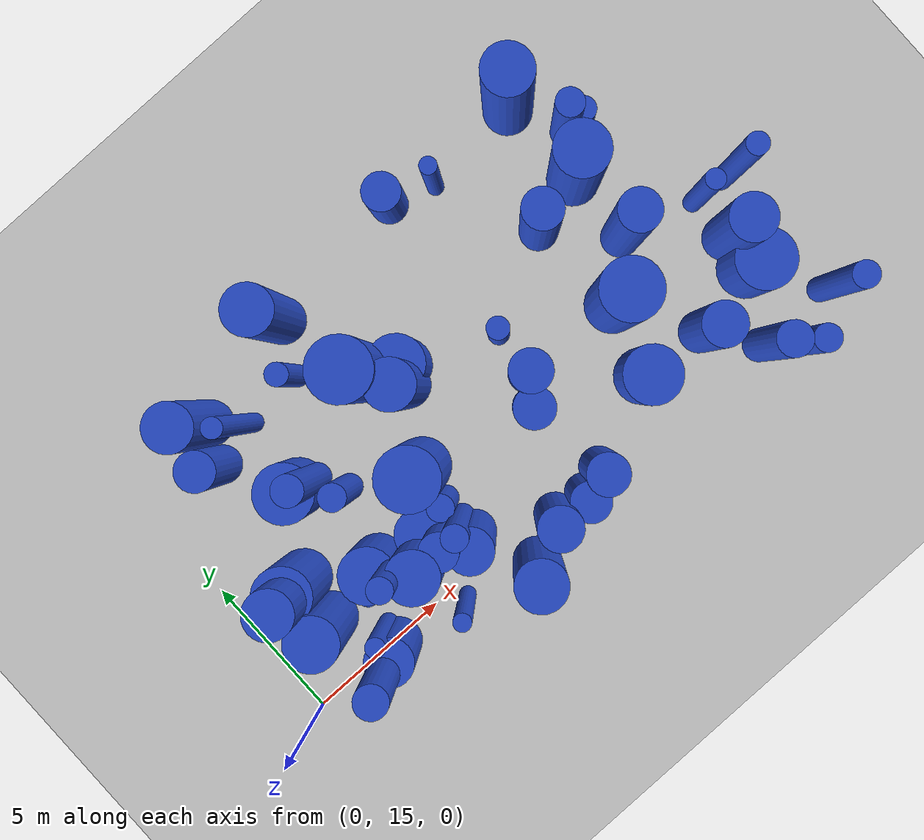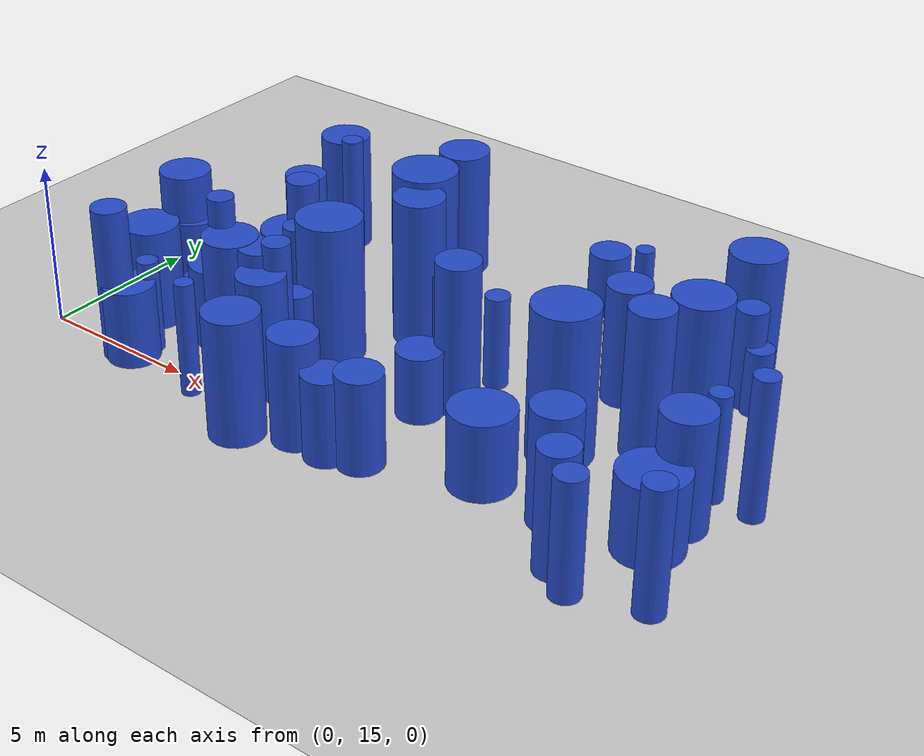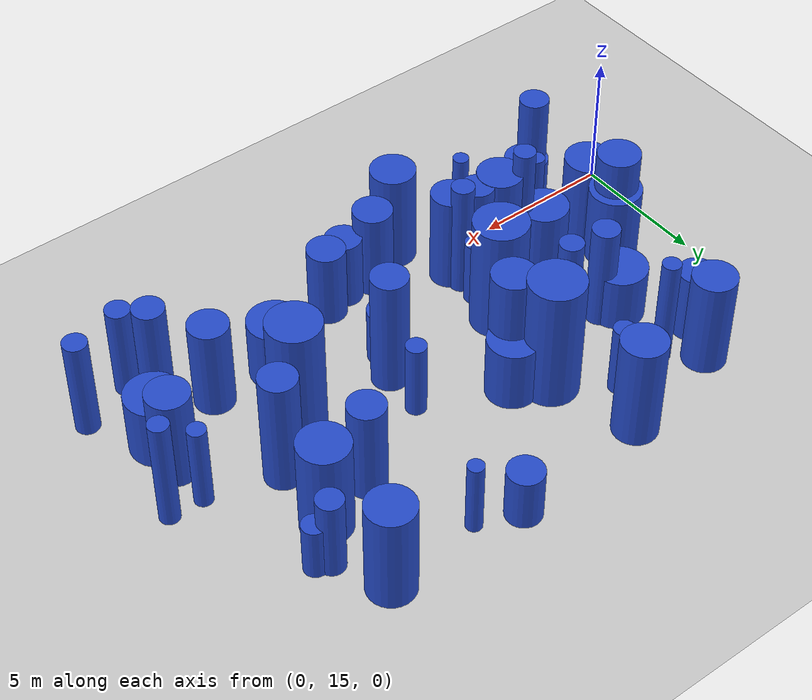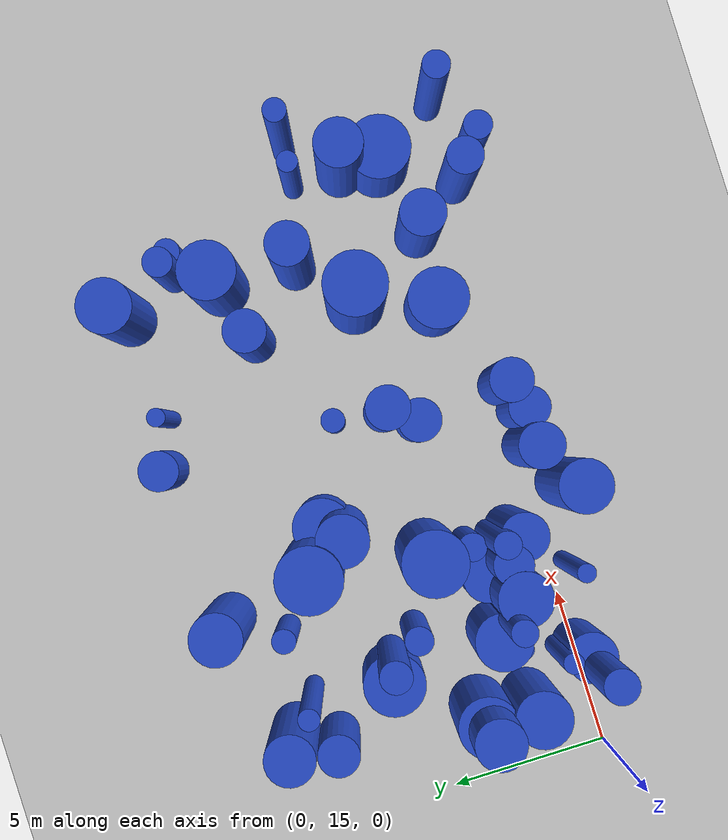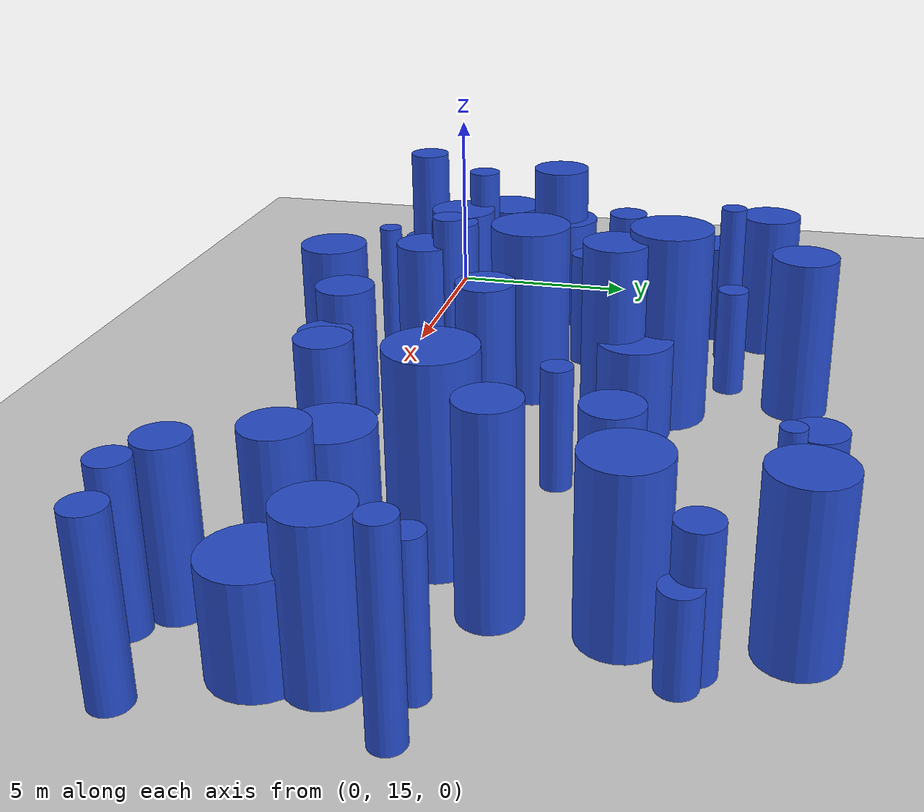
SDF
<sdf version="1.6">
 <world name="default">
  <model name="ground_plane">
   <static>1</static>
   <link name="link">
    <collision name="collision">
     <geometry><plane><normal>0 0 1</normal><size>100 100</size></plane></geometry>
     <surface><friction><ode><mu>100</mu><mu2>50</mu2></ode></friction></surface>
    </collision>
    <visual name="visual">
     <cast_shadows>0</cast_shadows>
     <geometry><plane><normal>0 0 1</normal><size>100 100</size></plane></geometry>
     <material>
      <script><uri>file://media/materials/scripts/gazebo.material</uri><name>Gazebo/Grey</name></script>
     </material>
    </visual>
   </link>
  </model>
  <model name="17">
   <static>0</static>
   <link name="link">
    <inertial>
     <mass>2</mass>
     <inertia><ixx>1.4202</ixx><ixy>0</ixy><ixz>0</ixz><iyy>1.4202</iyy><iyz>0</iyz><izz>0.970689</izz></inertia>
    </inertial>
    <collision name="collision">
     <geometry><cylinder><length>2.36836</length><radius>0.985235</radius></cylinder></geometry>
     <surface><contact><collide_without_contact>1</collide_without_contact></contact></surface>
    </collision>
    <visual name="visual">
     <geometry><cylinder><length>2.36836</length><radius>0.985235</radius></cylinder></geometry>
     <material>
      <script><uri>file://media/materials/scripts/gazebo.material</uri><name>Gazebo/Blue</name></script>
     </material>
    </visual>
    <gravity>0</gravity>
   </link>
   <pose>19.9852 16.4259 1.18418 0 -0 0</pose>
  </model>
  <model name="28">
   <static>0</static>
   <link name="link">
    <inertial>
     <mass>2</mass>
     <inertia><ixx>1.61305</ixx><ixy>0</ixy><ixz>0</ixz><iyy>1.61305</iyy><iyz>0</iyz><izz>0.463081</izz></inertia>
    </inertial>
    <collision name="collision">
     <geometry><cylinder><length>2.87908</length><radius>0.680501</radius></cylinder></geometry>
     <surface><contact><collide_without_contact>1</collide_without_contact></contact></surface>
    </collision>
    <visual name="visual">
     <geometry><cylinder><length>2.87908</length><radius>0.680501</radius></cylinder></geometry>
     <material>
      <script><uri>file://media/materials/scripts/gazebo.material</uri><name>Gazebo/Blue</name></script>
     </material>
    </visual>
    <gravity>0</gravity>
   </link>
   <pose>12.0274 14.794 1.43954 0 -0 0</pose>
  </model>
  <model name="45">
   <static>0</static>
   <link name="link">
    <inertial>
     <mass>2</mass>
     <inertia><ixx>1.28619</ixx><ixy>0</ixy><ixz>0</ixz><iyy>1.28619</iyy><iyz>0</iyz><izz>0.628767</izz></inertia>
    </inertial>
    <collision name="collision">
     <geometry><cylinder><length>2.41471</length><radius>0.792948</radius></cylinder></geometry>
     <surface><contact><collide_without_contact>1</collide_without_contact></contact></surface>
    </collision>
    <visual name="visual">
     <geometry><cylinder><length>2.41471</length><radius>0.792948</radius></cylinder></geometry>
     <material>
      <script><uri>file://media/materials/scripts/gazebo.material</uri><name>Gazebo/Blue</name></script>
     </material>
    </visual>
    <gravity>0</gravity>
   </link>
   <pose>6.54895 17.1856 1.20735 0 -0 0</pose>
  </model>
  <model name="54">
   <static>0</static>
   <link name="link">
    <inertial>
     <mass>2</mass>
     <inertia><ixx>1.90004</ixx><ixy>0</ixy><ixz>0</ixz><iyy>1.90004</iyy><iyz>0</iyz><izz>0.889584</izz></inertia>
    </inertial>
    <collision name="collision">
     <geometry><cylinder><length>2.95491</length><radius>0.943178</radius></cylinder></geometry>
     <surface><contact><collide_without_contact>1</collide_without_contact></contact></surface>
    </collision>
    <visual name="visual">
     <geometry><cylinder><length>2.95491</length><radius>0.943178</radius></cylinder></geometry>
     <material>
      <script><uri>file://media/materials/scripts/gazebo.material</uri><name>Gazebo/Blue</name></script>
     </material>
    </visual>
    <gravity>0</gravity>
   </link>
   <pose>2.3369 18.5513 1.47745 0 -0 0</pose>
  </model>
  <model name="55">
   <static>0</static>
   <link name="link">
    <inertial>
     <mass>2</mass>
     <inertia><ixx>2.77636</ixx><ixy>0</ixy><ixz>0</ixz><iyy>2.77636</iyy><iyz>0</iyz><izz>0.243438</izz></inertia>
    </inertial>
    <collision name="collision">
     <geometry><cylinder><length>3.99097</length><radius>0.493394</radius></cylinder></geometry>
     <surface><contact><collide_without_contact>1</collide_without_contact></contact></surface>
    </collision>
    <visual name="visual">
     <geometry><cylinder><length>3.99097</length><radius>0.493394</radius></cylinder></geometry>
     <material>
      <script><uri>file://media/materials/scripts/gazebo.material</uri><name>Gazebo/Blue</name></script>
     </material>
    </visual>
    <gravity>0</gravity>
   </link>
   <pose>4.84616 20.723 1.99548 0 -0 0</pose>
  </model>
  <model name="67">
   <static>0</static>
   <link name="link">
    <inertial>
     <mass>2</mass>
     <inertia><ixx>2.5861</ixx><ixy>0</ixy><ixz>0</ixz><iyy>2.5861</iyy><iyz>0</iyz><izz>0.518654</izz></inertia>
    </inertial>
    <collision name="collision">
     <geometry><cylinder><length>3.7364</length><radius>0.720177</radius></cylinder></geometry>
     <surface><contact><collide_without_contact>1</collide_without_contact></contact></surface>
    </collision>
    <visual name="visual">
     <geometry><cylinder><length>3.7364</length><radius>0.720177</radius></cylinder></geometry>
     <material>
      <script><uri>file://media/materials/scripts/gazebo.material</uri><name>Gazebo/Blue</name></script>
     </material>
    </visual>
    <gravity>0</gravity>
   </link>
   <pose>7.55571 15.9335 1.8682 0 -0 0</pose>
  </model>
  <model name="72">
   <static>0</static>
   <link name="link">
    <inertial>
     <mass>2</mass>
     <inertia>
      <ixx>2.14031</ixx>
      <ixy>0</ixy>
      <ixz>0</ixz>
      <iyy>2.14031</iyy>
      <iyz>0</iyz>
      <izz>0.0819198</izz>
     </inertia>
    </inertial>
    <collision name="collision">
     <geometry><cylinder><length>3.5491</length><radius>0.286216</radius></cylinder></geometry>
     <surface><contact><collide_without_contact>1</collide_without_contact></contact></surface>
    </collision>
    <visual name="visual">
     <geometry><cylinder><length>3.5491</length><radius>0.286216</radius></cylinder></geometry>
     <material>
      <script><uri>file://media/materials/scripts/gazebo.material</uri><name>Gazebo/Blue</name></script>
     </material>
    </visual>
    <gravity>0</gravity>
   </link>
   <pose>5.98317 14.5224 1.77455 0 -0 0</pose>
  </model>
  <model name="144">
   <static>0</static>
   <link name="link">
    <inertial>
     <mass>2</mass>
     <inertia><ixx>2.28391</ixx><ixy>0</ixy><ixz>0</ixz><iyy>2.28391</iyy><iyz>0</iyz><izz>0.498376</izz></inertia>
    </inertial>
    <collision name="collision">
     <geometry><cylinder><length>3.49405</length><radius>0.705958</radius></cylinder></geometry>
     <surface><contact><collide_without_contact>1</collide_without_contact></contact></surface>
    </collision>
    <visual name="visual">
     <geometry><cylinder><length>3.49405</length><radius>0.705958</radius></cylinder></geometry>
     <material>
      <script><uri>file://media/materials/scripts/gazebo.material</uri><name>Gazebo/Blue</name></script>
     </material>
    </visual>
    <gravity>0</gravity>
   </link>
   <pose>17.4609 15.8955 1.74702 0 -0 0</pose>
  </model>
  <model name="146">
   <static>0</static>
   <link name="link">
    <inertial>
     <mass>2</mass>
     <inertia><ixx>2.62442</ixx><ixy>0</ixy><ixz>0</ixz><iyy>2.62442</iyy><iyz>0</iyz><izz>0.606882</izz></inertia>
    </inertial>
    <collision name="collision">
     <geometry><cylinder><length>3.73174</length><radius>0.779026</radius></cylinder></geometry>
     <surface><contact><collide_without_contact>1</collide_without_contact></contact></surface>
    </collision>
    <visual name="visual">
     <geometry><cylinder><length>3.73174</length><radius>0.779026</radius></cylinder></geometry>
     <material>
      <script><uri>file://media/materials/scripts/gazebo.material</uri><name>Gazebo/Blue</name></script>
     </material>
    </visual>
    <gravity>0</gravity>
   </link>
   <pose>3.41377 24.3972 1.86587 0 -0 0</pose>
  </model>
  <model name="155">
   <static>0</static>
   <link name="link">
    <inertial>
     <mass>2</mass>
     <inertia><ixx>1.61175</ixx><ixy>0</ixy><ixz>0</ixz><iyy>1.61175</iyy><iyz>0</iyz><izz>0.196212</izz></inertia>
    </inertial>
    <collision name="collision">
     <geometry><cylinder><length>3.01361</length><radius>0.442958</radius></cylinder></geometry>
     <surface><contact><collide_without_contact>1</collide_without_contact></contact></surface>
    </collision>
    <visual name="visual">
     <geometry><cylinder><length>3.01361</length><radius>0.442958</radius></cylinder></geometry>
     <material>
      <script><uri>file://media/materials/scripts/gazebo.material</uri><name>Gazebo/Blue</name></script>
     </material>
    </visual>
    <gravity>0</gravity>
   </link>
   <pose>5.44769 19.7691 1.5068 0 -0 0</pose>
  </model>
  <model name="194">
   <static>0</static>
   <link name="link">
    <inertial>
     <mass>2</mass>
     <inertia><ixx>3.0246</ixx><ixy>0</ixy><ixz>0</ixz><iyy>3.0246</iyy><iyz>0</iyz><izz>0.355134</izz></inertia>
    </inertial>
    <collision name="collision">
     <geometry><cylinder><length>4.13306</length><radius>0.595932</radius></cylinder></geometry>
     <surface><contact><collide_without_contact>1</collide_without_contact></contact></surface>
    </collision>
    <visual name="visual">
     <geometry><cylinder><length>4.13306</length><radius>0.595932</radius></cylinder></geometry>
     <material>
      <script><uri>file://media/materials/scripts/gazebo.material</uri><name>Gazebo/Blue</name></script>
     </material>
    </visual>
    <gravity>0</gravity>
   </link>
   <pose>6.92182 16.5467 2.06653 0 -0 0</pose>
  </model>
  <model name="198">
   <static>0</static>
   <link name="link">
    <inertial>
     <mass>2</mass>
     <inertia><ixx>4.2338</ixx><ixy>0</ixy><ixz>0</ixz><iyy>4.2338</iyy><iyz>0</iyz><izz>0.152639</izz></inertia>
    </inertial>
    <collision name="collision">
     <geometry><cylinder><length>4.99449</length><radius>0.39069</radius></cylinder></geometry>
     <surface><contact><collide_without_contact>1</collide_without_contact></contact></surface>
    </collision>
    <visual name="visual">
     <geometry><cylinder><length>4.99449</length><radius>0.39069</radius></cylinder></geometry>
     <material>
      <script><uri>file://media/materials/scripts/gazebo.material</uri><name>Gazebo/Blue</name></script>
     </material>
    </visual>
    <gravity>0</gravity>
   </link>
   <pose>5.18608 16.9197 2.49724 0 -0 0</pose>
  </model>
  <model name="200">
   <static>0</static>
   <link name="link">
    <inertial>
     <mass>2</mass>
     <inertia><ixx>2.08045</ixx><ixy>0</ixy><ixz>0</ixz><iyy>2.08045</iyy><iyz>0</iyz><izz>0.755702</izz></inertia>
    </inertial>
    <collision name="collision">
     <geometry><cylinder><length>3.19619</length><radius>0.869311</radius></cylinder></geometry>
     <surface><contact><collide_without_contact>1</collide_without_contact></contact></surface>
    </collision>
    <visual name="visual">
     <geometry><cylinder><length>3.19619</length><radius>0.869311</radius></cylinder></geometry>
     <material>
      <script><uri>file://media/materials/scripts/gazebo.material</uri><name>Gazebo/Blue</name></script>
     </material>
    </visual>
    <gravity>0</gravity>
   </link>
   <pose>2.14923 16.9427 1.59809 0 -0 0</pose>
  </model>
  <model name="210">
   <static>0</static>
   <link name="link">
    <inertial>
     <mass>2</mass>
     <inertia><ixx>3.85439</ixx><ixy>0</ixy><ixz>0</ixz><iyy>3.85439</iyy><iyz>0</iyz><izz>0.607293</izz></inertia>
    </inertial>
    <collision name="collision">
     <geometry><cylinder><length>4.61568</length><radius>0.77929</radius></cylinder></geometry>
     <surface><contact><collide_without_contact>1</collide_without_contact></contact></surface>
    </collision>
    <visual name="visual">
     <geometry><cylinder><length>4.61568</length><radius>0.77929</radius></cylinder></geometry>
     <material>
      <script><uri>file://media/materials/scripts/gazebo.material</uri><name>Gazebo/Blue</name></script>
     </material>
    </visual>
    <gravity>0</gravity>
   </link>
   <pose>9.09945 20.995 2.30784 0 -0 0</pose>
  </model>
  <model name="214">
   <static>0</static>
   <link name="link">
    <inertial>
     <mass>2</mass>
     <inertia><ixx>3.20691</ixx><ixy>0</ixy><ixz>0</ixz><iyy>3.20691</iyy><iyz>0</iyz><izz>0.673461</izz></inertia>
    </inertial>
    <collision name="collision">
     <geometry><cylinder><length>4.14983</length><radius>0.820647</radius></cylinder></geometry>
     <surface><contact><collide_without_contact>1</collide_without_contact></contact></surface>
    </collision>
    <visual name="visual">
     <geometry><cylinder><length>4.14983</length><radius>0.820647</radius></cylinder></geometry>
     <material>
      <script><uri>file://media/materials/scripts/gazebo.material</uri><name>Gazebo/Blue</name></script>
     </material>
    </visual>
    <gravity>0</gravity>
   </link>
   <pose>5.88974 16.5064 2.07491 0 -0 0</pose>
  </model>
  <model name="218">
   <static>0</static>
   <link name="link">
    <inertial>
     <mass>2</mass>
     <inertia>
      <ixx>1.59405</ixx>
      <ixy>0</ixy>
      <ixz>0</ixz>
      <iyy>1.59405</iyy>
      <iyz>0</iyz>
      <izz>0.0837609</izz>
     </inertia>
    </inertial>
    <collision name="collision">
     <geometry><cylinder><length>3.05172</length><radius>0.289415</radius></cylinder></geometry>
     <surface><contact><collide_without_contact>1</collide_without_contact></contact></surface>
    </collision>
    <visual name="visual">
     <geometry><cylinder><length>3.05172</length><radius>0.289415</radius></cylinder></geometry>
     <material>
      <script><uri>file://media/materials/scripts/gazebo.material</uri><name>Gazebo/Blue</name></script>
     </material>
    </visual>
    <gravity>0</gravity>
   </link>
   <pose>6.53058 16.2683 1.52586 0 -0 0</pose>
  </model>
  <model name="219">
   <static>0</static>
   <link name="link">
    <inertial>
     <mass>2</mass>
     <inertia><ixx>1.66586</ixx><ixy>0</ixy><ixz>0</ixz><iyy>1.66586</iyy><iyz>0</iyz><izz>0.21267</izz></inertia>
    </inertial>
    <collision name="collision">
     <geometry><cylinder><length>3.05894</length><radius>0.461161</radius></cylinder></geometry>
     <surface><contact><collide_without_contact>1</collide_without_contact></contact></surface>
    </collision>
    <visual name="visual">
     <geometry><cylinder><length>3.05894</length><radius>0.461161</radius></cylinder></geometry>
     <material>
      <script><uri>file://media/materials/scripts/gazebo.material</uri><name>Gazebo/Blue</name></script>
     </material>
    </visual>
    <gravity>0</gravity>
   </link>
   <pose>18.5083 23.7989 1.52947 0 -0 0</pose>
  </model>
  <model name="227">
   <static>0</static>
   <link name="link">
    <inertial>
     <mass>2</mass>
     <inertia><ixx>1.16522</ixx><ixy>0</ixy><ixz>0</ixz><iyy>1.16522</iyy><iyz>0</iyz><izz>0.190288</izz></inertia>
    </inertial>
    <collision name="collision">
     <geometry><cylinder><length>2.53386</length><radius>0.43622</radius></cylinder></geometry>
     <surface><contact><collide_without_contact>1</collide_without_contact></contact></surface>
    </collision>
    <visual name="visual">
     <geometry><cylinder><length>2.53386</length><radius>0.43622</radius></cylinder></geometry>
     <material>
      <script><uri>file://media/materials/scripts/gazebo.material</uri><name>Gazebo/Blue</name></script>
     </material>
    </visual>
    <gravity>0</gravity>
   </link>
   <pose>7.56621 17.3752 1.26693 0 -0 0</pose>
  </model>
  <model name="233">
   <static>0</static>
   <link name="link">
    <inertial>
     <mass>2</mass>
     <inertia><ixx>2.20352</ixx><ixy>0</ixy><ixz>0</ixz><iyy>2.20352</iyy><iyz>0</iyz><izz>0.261686</izz></inertia>
    </inertial>
    <collision name="collision">
     <geometry><cylinder><length>3.52648</length><radius>0.511553</radius></cylinder></geometry>
     <surface><contact><collide_without_contact>1</collide_without_contact></contact></surface>
    </collision>
    <visual name="visual">
     <geometry><cylinder><length>3.52648</length><radius>0.511553</radius></cylinder></geometry>
     <material>
      <script><uri>file://media/materials/scripts/gazebo.material</uri><name>Gazebo/Blue</name></script>
     </material>
    </visual>
    <gravity>0</gravity>
   </link>
   <pose>8.03576 18.5915 1.76324 0 -0 0</pose>
  </model>
  <model name="239">
   <static>0</static>
   <link name="link">
    <inertial>
     <mass>2</mass>
     <inertia>
      <ixx>0.770684</ixx>
      <ixy>0</ixy>
      <ixz>0</ixz>
      <iyy>0.770684</iyy>
      <iyz>0</iyz>
      <izz>0.170655</izz>
     </inertia>
    </inertial>
    <collision name="collision">
     <geometry><cylinder><length>2.02784</length><radius>0.413104</radius></cylinder></geometry>
     <surface><contact><collide_without_contact>1</collide_without_contact></contact></surface>
    </collision>
    <visual name="visual">
     <geometry><cylinder><length>2.02784</length><radius>0.413104</radius></cylinder></geometry>
     <material>
      <script><uri>file://media/materials/scripts/gazebo.material</uri><name>Gazebo/Blue</name></script>
     </material>
    </visual>
    <gravity>0</gravity>
   </link>
   <pose>18.9607 23.5768 1.01392 0 -0 0</pose>
  </model>
  <model name="251">
   <static>0</static>
   <link name="link">
    <inertial>
     <mass>2</mass>
     <inertia><ixx>3.00268</ixx><ixy>0</ixy><ixz>0</ixz><iyy>3.00268</iyy><iyz>0</iyz><izz>0.637037</izz></inertia>
    </inertial>
    <collision name="collision">
     <geometry><cylinder><length>4.0131</length><radius>0.798146</radius></cylinder></geometry>
     <surface><contact><collide_without_contact>1</collide_without_contact></contact></surface>
    </collision>
    <visual name="visual">
     <geometry><cylinder><length>4.0131</length><radius>0.798146</radius></cylinder></geometry>
     <material>
      <script><uri>file://media/materials/scripts/gazebo.material</uri><name>Gazebo/Blue</name></script>
     </material>
    </visual>
    <gravity>0</gravity>
   </link>
   <pose>7.4374 25.3381 2.00655 0 -0 0</pose>
  </model>
  <model name="258">
   <static>0</static>
   <link name="link">
    <inertial>
     <mass>2</mass>
     <inertia><ixx>3.07249</ixx><ixy>0</ixy><ixz>0</ixz><iyy>3.07249</iyy><iyz>0</iyz><izz>0.125973</izz></inertia>
    </inertial>
    <collision name="collision">
     <geometry><cylinder><length>4.24935</length><radius>0.354926</radius></cylinder></geometry>
     <surface><contact><collide_without_contact>1</collide_without_contact></contact></surface>
    </collision>
    <visual name="visual">
     <geometry><cylinder><length>4.24935</length><radius>0.354926</radius></cylinder></geometry>
     <material>
      <script><uri>file://media/materials/scripts/gazebo.material</uri><name>Gazebo/Blue</name></script>
     </material>
    </visual>
    <gravity>0</gravity>
   </link>
   <pose>21.3577 19.1692 2.12468 0 -0 0</pose>
  </model>
  <model name="287">
   <static>0</static>
   <link name="link">
    <inertial>
     <mass>2</mass>
     <inertia><ixx>1.81957</ixx><ixy>0</ixy><ixz>0</ixz><iyy>1.81957</iyy><iyz>0</iyz><izz>0.105325</izz></inertia>
    </inertial>
    <collision name="collision">
     <geometry><cylinder><length>3.25598</length><radius>0.324538</radius></cylinder></geometry>
     <surface><contact><collide_without_contact>1</collide_without_contact></contact></surface>
    </collision>
    <visual name="visual">
     <geometry><cylinder><length>3.25598</length><radius>0.324538</radius></cylinder></geometry>
     <material>
      <script><uri>file://media/materials/scripts/gazebo.material</uri><name>Gazebo/Blue</name></script>
     </material>
    </visual>
    <gravity>0</gravity>
   </link>
   <pose>20.1394 19.239 1.62799 0 -0 0</pose>
  </model>
  <model name="289">
   <static>0</static>
   <link name="link">
    <inertial>
     <mass>2</mass>
     <inertia><ixx>4.33337</ixx><ixy>0</ixy><ixz>0</ixz><iyy>4.33337</iyy><iyz>0</iyz><izz>0.978257</izz></inertia>
    </inertial>
    <collision name="collision">
     <geometry><cylinder><length>4.80265</length><radius>0.989069</radius></cylinder></geometry>
     <surface><contact><collide_without_contact>1</collide_without_contact></contact></surface>
    </collision>
    <visual name="visual">
     <geometry><cylinder><length>4.80265</length><radius>0.989069</radius></cylinder></geometry>
     <material>
      <script><uri>file://media/materials/scripts/gazebo.material</uri><name>Gazebo/Blue</name></script>
     </material>
    </visual>
    <gravity>0</gravity>
   </link>
   <pose>8.35514 22.2099 2.40132 0 -0 0</pose>
  </model>
  <model name="295">
   <static>0</static>
   <link name="link">
    <inertial>
     <mass>2</mass>
     <inertia><ixx>2.21911</ixx><ixy>0</ixy><ixz>0</ixz><iyy>2.21911</iyy><iyz>0</iyz><izz>0.189658</izz></inertia>
    </inertial>
    <collision name="collision">
     <geometry><cylinder><length>3.57011</length><radius>0.435498</radius></cylinder></geometry>
     <surface><contact><collide_without_contact>1</collide_without_contact></contact></surface>
    </collision>
    <visual name="visual">
     <geometry><cylinder><length>3.57011</length><radius>0.435498</radius></cylinder></geometry>
     <material>
      <script><uri>file://media/materials/scripts/gazebo.material</uri><name>Gazebo/Blue</name></script>
     </material>
    </visual>
    <gravity>0</gravity>
   </link>
   <pose>19.3996 13.6219 1.78506 0 -0 0</pose>
  </model>
  <model name="302">
   <static>0</static>
   <link name="link">
    <inertial>
     <mass>2</mass>
     <inertia><ixx>2.80221</ixx><ixy>0</ixy><ixz>0</ixz><iyy>2.80221</iyy><iyz>0</iyz><izz>0.664484</izz></inertia>
    </inertial>
    <collision name="collision">
     <geometry><cylinder><length>3.84965</length><radius>0.815159</radius></cylinder></geometry>
     <surface><contact><collide_without_contact>1</collide_without_contact></contact></surface>
    </collision>
    <visual name="visual">
     <geometry><cylinder><length>3.84965</length><radius>0.815159</radius></cylinder></geometry>
     <material>
      <script><uri>file://media/materials/scripts/gazebo.material</uri><name>Gazebo/Blue</name></script>
     </material>
    </visual>
    <gravity>0</gravity>
   </link>
   <pose>8.4364 13.8272 1.92483 0 -0 0</pose>
  </model>
  <model name="303">
   <static>0</static>
   <link name="link">
    <inertial>
     <mass>2</mass>
     <inertia>
      <ixx>0.868335</ixx>
      <ixy>0</ixy>
      <ixz>0</ixz>
      <iyy>0.868335</iyy>
      <iyz>0</iyz>
      <izz>0.399831</izz>
     </inertia>
    </inertial>
    <collision name="collision">
     <geometry><cylinder><length>2.00263</length><radius>0.632322</radius></cylinder></geometry>
     <surface><contact><collide_without_contact>1</collide_without_contact></contact></surface>
    </collision>
    <visual name="visual">
     <geometry><cylinder><length>2.00263</length><radius>0.632322</radius></cylinder></geometry>
     <material>
      <script><uri>file://media/materials/scripts/gazebo.material</uri><name>Gazebo/Blue</name></script>
     </material>
    </visual>
    <gravity>0</gravity>
   </link>
   <pose>12.6138 25.836 1.00131 0 -0 0</pose>
  </model>
  <model name="313">
   <static>0</static>
   <link name="link">
    <inertial>
     <mass>2</mass>
     <inertia><ixx>1.35172</ixx><ixy>0</ixy><ixz>0</ixz><iyy>1.35172</iyy><iyz>0</iyz><izz>0.840138</izz></inertia>
    </inertial>
    <collision name="collision">
     <geometry><cylinder><length>2.3643</length><radius>0.916591</radius></cylinder></geometry>
     <surface><contact><collide_without_contact>1</collide_without_contact></contact></surface>
    </collision>
    <visual name="visual">
     <geometry><cylinder><length>2.3643</length><radius>0.916591</radius></cylinder></geometry>
     <material>
      <script><uri>file://media/materials/scripts/gazebo.material</uri><name>Gazebo/Blue</name></script>
     </material>
    </visual>
    <gravity>0</gravity>
   </link>
   <pose>9.47035 21.5471 1.18215 0 -0 0</pose>
  </model>
  <model name="317">
   <static>0</static>
   <link name="link">
    <inertial>
     <mass>2</mass>
     <inertia><ixx>1.39214</ixx><ixy>0</ixy><ixz>0</ixz><iyy>1.39214</iyy><iyz>0</iyz><izz>0.428124</izz></inertia>
    </inertial>
    <collision name="collision">
     <geometry><cylinder><length>2.65866</length><radius>0.654312</radius></cylinder></geometry>
     <surface><contact><collide_without_contact>1</collide_without_contact></contact></surface>
    </collision>
    <visual name="visual">
     <geometry><cylinder><length>2.65866</length><radius>0.654312</radius></cylinder></geometry>
     <material>
      <script><uri>file://media/materials/scripts/gazebo.material</uri><name>Gazebo/Blue</name></script>
     </material>
    </visual>
    <gravity>0</gravity>
   </link>
   <pose>2.80651 23.1085 1.32933 0 -0 0</pose>
  </model>
  <model name="319">
   <static>0</static>
   <link name="link">
    <inertial>
     <mass>2</mass>
     <inertia><ixx>2.76079</ixx><ixy>0</ixy><ixz>0</ixz><iyy>2.76079</iyy><iyz>0</iyz><izz>0.78231</izz></inertia>
    </inertial>
    <collision name="collision">
     <geometry><cylinder><length>3.77065</length><radius>0.884483</radius></cylinder></geometry>
     <surface><contact><collide_without_contact>1</collide_without_contact></contact></surface>
    </collision>
    <visual name="visual">
     <geometry><cylinder><length>3.77065</length><radius>0.884483</radius></cylinder></geometry>
     <material>
      <script><uri>file://media/materials/scripts/gazebo.material</uri><name>Gazebo/Blue</name></script>
     </material>
    </visual>
    <gravity>0</gravity>
   </link>
   <pose>17.6963 22.433 1.88532 0 -0 0</pose>
  </model>
  <model name="323">
   <static>0</static>
   <link name="link">
    <inertial>
     <mass>2</mass>
     <inertia><ixx>2.45492</ixx><ixy>0</ixy><ixz>0</ixz><iyy>2.45492</iyy><iyz>0</iyz><izz>0.426297</izz></inertia>
    </inertial>
    <collision name="collision">
     <geometry><cylinder><length>3.66751</length><radius>0.652914</radius></cylinder></geometry>
     <surface><contact><collide_without_contact>1</collide_without_contact></contact></surface>
    </collision>
    <visual name="visual">
     <geometry><cylinder><length>3.66751</length><radius>0.652914</radius></cylinder></geometry>
     <material>
      <script><uri>file://media/materials/scripts/gazebo.material</uri><name>Gazebo/Blue</name></script>
     </material>
    </visual>
    <gravity>0</gravity>
   </link>
   <pose>15.7057 21.912 1.83376 0 -0 0</pose>
  </model>
  <model name="328">
   <static>0</static>
   <link name="link">
    <inertial>
     <mass>2</mass>
     <inertia><ixx>2.11547</ixx><ixy>0</ixy><ixz>0</ixz><iyy>2.11547</iyy><iyz>0</iyz><izz>0.502536</izz></inertia>
    </inertial>
    <collision name="collision">
     <geometry><cylinder><length>3.34443</length><radius>0.708898</radius></cylinder></geometry>
     <surface><contact><collide_without_contact>1</collide_without_contact></contact></surface>
    </collision>
    <visual name="visual">
     <geometry><cylinder><length>3.34443</length><radius>0.708898</radius></cylinder></geometry>
     <material>
      <script><uri>file://media/materials/scripts/gazebo.material</uri><name>Gazebo/Blue</name></script>
     </material>
    </visual>
    <gravity>0</gravity>
   </link>
   <pose>9.9106 14.6027 1.67221 0 -0 0</pose>
  </model>
  <model name="348">
   <static>0</static>
   <link name="link">
    <inertial>
     <mass>2</mass>
     <inertia><ixx>1.3385</ixx><ixy>0</ixy><ixz>0</ixz><iyy>1.3385</iyy><iyz>0</iyz><izz>0.081659</izz></inertia>
    </inertial>
    <collision name="collision">
     <geometry><cylinder><length>2.79035</length><radius>0.28576</radius></cylinder></geometry>
     <surface><contact><collide_without_contact>1</collide_without_contact></contact></surface>
    </collision>
    <visual name="visual">
     <geometry><cylinder><length>2.79035</length><radius>0.28576</radius></cylinder></geometry>
     <material>
      <script><uri>file://media/materials/scripts/gazebo.material</uri><name>Gazebo/Blue</name></script>
     </material>
    </visual>
    <gravity>0</gravity>
   </link>
   <pose>14.1474 25.2689 1.39517 0 -0 0</pose>
  </model>
  <model name="364">
   <static>0</static>
   <link name="link">
    <inertial>
     <mass>2</mass>
     <inertia>
      <ixx>0.950334</ixx>
      <ixy>0</ixy>
      <ixz>0</ixz>
      <iyy>0.950334</iyy>
      <iyz>0</iyz>
      <izz>0.471783</izz>
     </inertia>
    </inertial>
    <collision name="collision">
     <geometry><cylinder><length>2.07042</length><radius>0.686864</radius></cylinder></geometry>
     <surface><contact><collide_without_contact>1</collide_without_contact></contact></surface>
    </collision>
    <visual name="visual">
     <geometry><cylinder><length>2.07042</length><radius>0.686864</radius></cylinder></geometry>
     <material>
      <script><uri>file://media/materials/scripts/gazebo.material</uri><name>Gazebo/Blue</name></script>
     </material>
    </visual>
    <gravity>0</gravity>
   </link>
   <pose>11.7089 17.7133 1.03521 0 -0 0</pose>
  </model>
  <model name="372">
   <static>0</static>
   <link name="link">
    <inertial>
     <mass>2</mass>
     <inertia>
      <ixx>0.801624</ixx>
      <ixy>0</ixy>
      <ixz>0</ixz>
      <iyy>0.801624</iyy>
      <iyz>0</iyz>
      <izz>0.114055</izz>
     </inertia>
    </inertial>
    <collision name="collision">
     <geometry><cylinder><length>2.11367</length><radius>0.33772</radius></cylinder></geometry>
     <surface><contact><collide_without_contact>1</collide_without_contact></contact></surface>
    </collision>
    <visual name="visual">
     <geometry><cylinder><length>2.11367</length><radius>0.33772</radius></cylinder></geometry>
     <material>
      <script><uri>file://media/materials/scripts/gazebo.material</uri><name>Gazebo/Blue</name></script>
     </material>
    </visual>
    <gravity>0</gravity>
   </link>
   <pose>4.06327 16.8084 1.05683 0 -0 0</pose>
  </model>
  <model name="374">
   <static>0</static>
   <link name="link">
    <inertial>
     <mass>2</mass>
     <inertia><ixx>3.55937</ixx><ixy>0</ixy><ixz>0</ixz><iyy>3.55937</iyy><iyz>0</iyz><izz>0.43241</izz></inertia>
    </inertial>
    <collision name="collision">
     <geometry><cylinder><length>4.47873</length><radius>0.657579</radius></cylinder></geometry>
     <surface><contact><collide_without_contact>1</collide_without_contact></contact></surface>
    </collision>
    <visual name="visual">
     <geometry><cylinder><length>4.47873</length><radius>0.657579</radius></cylinder></geometry>
     <material>
      <script><uri>file://media/materials/scripts/gazebo.material</uri><name>Gazebo/Blue</name></script>
     </material>
    </visual>
    <gravity>0</gravity>
   </link>
   <pose>17.5824 19.9673 2.23936 0 -0 0</pose>
  </model>
  <model name="377">
   <static>0</static>
   <link name="link">
    <inertial>
     <mass>2</mass>
     <inertia><ixx>2.38753</ixx><ixy>0</ixy><ixz>0</ixz><iyy>2.38753</iyy><iyz>0</iyz><izz>0.563956</izz></inertia>
    </inertial>
    <collision name="collision">
     <geometry><cylinder><length>3.55434</length><radius>0.75097</radius></cylinder></geometry>
     <surface><contact><collide_without_contact>1</collide_without_contact></contact></surface>
    </collision>
    <visual name="visual">
     <geometry><cylinder><length>3.55434</length><radius>0.75097</radius></cylinder></geometry>
     <material>
      <script><uri>file://media/materials/scripts/gazebo.material</uri><name>Gazebo/Blue</name></script>
     </material>
    </visual>
    <gravity>0</gravity>
   </link>
   <pose>20.135 17.66 1.77717 0 -0 0</pose>
  </model>
  <model name="385">
   <static>0</static>
   <link name="link">
    <inertial>
     <mass>2</mass>
     <inertia><ixx>1.18415</ixx><ixy>0</ixy><ixz>0</ixz><iyy>1.18415</iyy><iyz>0</iyz><izz>0.951592</izz></inertia>
    </inertial>
    <collision name="collision">
     <geometry><cylinder><length>2.06158</length><radius>0.975496</radius></cylinder></geometry>
     <surface><contact><collide_without_contact>1</collide_without_contact></contact></surface>
    </collision>
    <visual name="visual">
     <geometry><cylinder><length>2.06158</length><radius>0.975496</radius></cylinder></geometry>
     <material>
      <script><uri>file://media/materials/scripts/gazebo.material</uri><name>Gazebo/Blue</name></script>
     </material>
    </visual>
    <gravity>0</gravity>
   </link>
   <pose>4.1841 20.8902 1.03079 0 -0 0</pose>
  </model>
  <model name="389">
   <static>0</static>
   <link name="link">
    <inertial>
     <mass>2</mass>
     <inertia><ixx>3.97055</ixx><ixy>0</ixy><ixz>0</ixz><iyy>3.97055</iyy><iyz>0</iyz><izz>0.275215</izz></inertia>
    </inertial>
    <collision name="collision">
     <geometry><cylinder><length>4.79558</length><radius>0.524609</radius></cylinder></geometry>
     <surface><contact><collide_without_contact>1</collide_without_contact></contact></surface>
    </collision>
    <visual name="visual">
     <geometry><cylinder><length>4.79558</length><radius>0.524609</radius></cylinder></geometry>
     <material>
      <script><uri>file://media/materials/scripts/gazebo.material</uri><name>Gazebo/Blue</name></script>
     </material>
    </visual>
    <gravity>0</gravity>
   </link>
   <pose>2.89731 14.7638 2.39779 0 -0 0</pose>
  </model>
  <model name="395">
   <static>0</static>
   <link name="link">
    <inertial>
     <mass>2</mass>
     <inertia><ixx>1.44978</ixx><ixy>0</ixy><ixz>0</ixz><iyy>1.44978</iyy><iyz>0</iyz><izz>0.133924</izz></inertia>
    </inertial>
    <collision name="collision">
     <geometry><cylinder><length>2.88043</length><radius>0.365956</radius></cylinder></geometry>
     <surface><contact><collide_without_contact>1</collide_without_contact></contact></surface>
    </collision>
    <visual name="visual">
     <geometry><cylinder><length>2.88043</length><radius>0.365956</radius></cylinder></geometry>
     <material>
      <script><uri>file://media/materials/scripts/gazebo.material</uri><name>Gazebo/Blue</name></script>
     </material>
    </visual>
    <gravity>0</gravity>
   </link>
   <pose>12.4703 20.2507 1.44022 0 -0 0</pose>
  </model>
  <model name="411">
   <static>0</static>
   <link name="link">
    <inertial>
     <mass>2</mass>
     <inertia><ixx>1.37079</ixx><ixy>0</ixy><ixz>0</ixz><iyy>1.37079</iyy><iyz>0</iyz><izz>0.424114</izz></inertia>
    </inertial>
    <collision name="collision">
     <geometry><cylinder><length>2.63674</length><radius>0.65124</radius></cylinder></geometry>
     <surface><contact><collide_without_contact>1</collide_without_contact></contact></surface>
    </collision>
    <visual name="visual">
     <geometry><cylinder><length>2.63674</length><radius>0.65124</radius></cylinder></geometry>
     <material>
      <script><uri>file://media/materials/scripts/gazebo.material</uri><name>Gazebo/Blue</name></script>
     </material>
    </visual>
    <gravity>0</gravity>
   </link>
   <pose>11.0857 14.4888 1.31837 0 -0 0</pose>
  </model>
  <model name="422">
   <static>0</static>
   <link name="link">
    <inertial>
     <mass>2</mass>
     <inertia><ixx>3.76742</ixx><ixy>0</ixy><ixz>0</ixz><iyy>3.76742</iyy><iyz>0</iyz><izz>0.956761</izz></inertia>
    </inertial>
    <collision name="collision">
     <geometry><cylinder><length>4.44232</length><radius>0.978142</radius></cylinder></geometry>
     <surface><contact><collide_without_contact>1</collide_without_contact></contact></surface>
    </collision>
    <visual name="visual">
     <geometry><cylinder><length>4.44232</length><radius>0.978142</radius></cylinder></geometry>
     <material>
      <script><uri>file://media/materials/scripts/gazebo.material</uri><name>Gazebo/Blue</name></script>
     </material>
    </visual>
    <gravity>0</gravity>
   </link>
   <pose>7.68626 18.6827 2.22116 0 -0 0</pose>
  </model>
  <model name="428">
   <static>0</static>
   <link name="link">
    <inertial>
     <mass>2</mass>
     <inertia><ixx>2.71599</ixx><ixy>0</ixy><ixz>0</ixz><iyy>2.71599</iyy><iyz>0</iyz><izz>0.691182</izz></inertia>
    </inertial>
    <collision name="collision">
     <geometry><cylinder><length>3.77126</length><radius>0.831373</radius></cylinder></geometry>
     <surface><contact><collide_without_contact>1</collide_without_contact></contact></surface>
    </collision>
    <visual name="visual">
     <geometry><cylinder><length>3.77126</length><radius>0.831373</radius></cylinder></geometry>
     <material>
      <script><uri>file://media/materials/scripts/gazebo.material</uri><name>Gazebo/Blue</name></script>
     </material>
    </visual>
    <gravity>0</gravity>
   </link>
   <pose>17.6023 25.5675 1.88563 0 -0 0</pose>
  </model>
  <model name="429">
   <static>0</static>
   <link name="link">
    <inertial>
     <mass>2</mass>
     <inertia><ixx>2.52173</ixx><ixy>0</ixy><ixz>0</ixz><iyy>2.52173</iyy><iyz>0</iyz><izz>0.179671</izz></inertia>
    </inertial>
    <collision name="collision">
     <geometry><cylinder><length>3.81987</length><radius>0.423876</radius></cylinder></geometry>
     <surface><contact><collide_without_contact>1</collide_without_contact></contact></surface>
    </collision>
    <visual name="visual">
     <geometry><cylinder><length>3.81987</length><radius>0.423876</radius></cylinder></geometry>
     <material>
      <script><uri>file://media/materials/scripts/gazebo.material</uri><name>Gazebo/Blue</name></script>
     </material>
    </visual>
    <gravity>0</gravity>
   </link>
   <pose>21.3535 14.301 1.90993 0 -0 0</pose>
  </model>
  <model name="432">
   <static>0</static>
   <link name="link">
    <inertial>
     <mass>2</mass>
     <inertia><ixx>1.48128</ixx><ixy>0</ixy><ixz>0</ixz><iyy>1.48128</iyy><iyz>0</iyz><izz>0.102223</izz></inertia>
    </inertial>
    <collision name="collision">
     <geometry><cylinder><length>2.92934</length><radius>0.319723</radius></cylinder></geometry>
     <surface><contact><collide_without_contact>1</collide_without_contact></contact></surface>
    </collision>
    <visual name="visual">
     <geometry><cylinder><length>2.92934</length><radius>0.319723</radius></cylinder></geometry>
     <material>
      <script><uri>file://media/materials/scripts/gazebo.material</uri><name>Gazebo/Blue</name></script>
     </material>
    </visual>
    <gravity>0</gravity>
   </link>
   <pose>3.41049 15.5797 1.46467 0 -0 0</pose>
  </model>
  <model name="433">
   <static>0</static>
   <link name="link">
    <inertial>
     <mass>2</mass>
     <inertia><ixx>2.99948</ixx><ixy>0</ixy><ixz>0</ixz><iyy>2.99948</iyy><iyz>0</iyz><izz>0.107204</izz></inertia>
    </inertial>
    <collision name="collision">
     <geometry><cylinder><length>4.2042</length><radius>0.32742</radius></cylinder></geometry>
     <surface><contact><collide_without_contact>1</collide_without_contact></contact></surface>
    </collision>
    <visual name="visual">
     <geometry><cylinder><length>4.2042</length><radius>0.32742</radius></cylinder></geometry>
     <material>
      <script><uri>file://media/materials/scripts/gazebo.material</uri><name>Gazebo/Blue</name></script>
     </material>
    </visual>
    <gravity>0</gravity>
   </link>
   <pose>4.49917 23.451 2.1021 0 -0 0</pose>
  </model>
  <model name="438">
   <static>0</static>
   <link name="link">
    <inertial>
     <mass>2</mass>
     <inertia><ixx>1.29468</ixx><ixy>0</ixy><ixz>0</ixz><iyy>1.29468</iyy><iyz>0</iyz><izz>0.621035</izz></inertia>
    </inertial>
    <collision name="collision">
     <geometry><cylinder><length>2.43001</length><radius>0.788058</radius></cylinder></geometry>
     <surface><contact><collide_without_contact>1</collide_without_contact></contact></surface>
    </collision>
    <visual name="visual">
     <geometry><cylinder><length>2.43001</length><radius>0.788058</radius></cylinder></geometry>
     <material>
      <script><uri>file://media/materials/scripts/gazebo.material</uri><name>Gazebo/Blue</name></script>
     </material>
    </visual>
    <gravity>0</gravity>
   </link>
   <pose>3.26538 14.9073 1.21501 0 -0 0</pose>
  </model>
  <model name="450">
   <static>0</static>
   <link name="link">
    <inertial>
     <mass>2</mass>
     <inertia><ixx>3.41754</ixx><ixy>0</ixy><ixz>0</ixz><iyy>3.41754</iyy><iyz>0</iyz><izz>0.167617</izz></inertia>
    </inertial>
    <collision name="collision">
     <geometry><cylinder><length>4.47241</length><radius>0.40941</radius></cylinder></geometry>
     <surface><contact><collide_without_contact>1</collide_without_contact></contact></surface>
    </collision>
    <visual name="visual">
     <geometry><cylinder><length>4.47241</length><radius>0.40941</radius></cylinder></geometry>
     <material>
      <script><uri>file://media/materials/scripts/gazebo.material</uri><name>Gazebo/Blue</name></script>
     </material>
    </visual>
    <gravity>0</gravity>
   </link>
   <pose>7.58366 16.5771 2.2362 0 -0 0</pose>
  </model>
  <model name="458">
   <static>0</static>
   <link name="link">
    <inertial>
     <mass>2</mass>
     <inertia><ixx>1.37665</ixx><ixy>0</ixy><ixz>0</ixz><iyy>1.37665</iyy><iyz>0</iyz><izz>0.90507</izz></inertia>
    </inertial>
    <collision name="collision">
     <geometry><cylinder><length>2.35471</length><radius>0.951352</radius></cylinder></geometry>
     <surface><contact><collide_without_contact>1</collide_without_contact></contact></surface>
    </collision>
    <visual name="visual">
     <geometry><cylinder><length>2.35471</length><radius>0.951352</radius></cylinder></geometry>
     <material>
      <script><uri>file://media/materials/scripts/gazebo.material</uri><name>Gazebo/Blue</name></script>
     </material>
    </visual>
    <gravity>0</gravity>
   </link>
   <pose>15.0723 16.075 1.17736 0 -0 0</pose>
  </model>
  <model name="469">
   <static>0</static>
   <link name="link">
    <inertial>
     <mass>2</mass>
     <inertia><ixx>1.30063</ixx><ixy>0</ixy><ixz>0</ixz><iyy>1.30063</iyy><iyz>0</iyz><izz>0.142948</izz></inertia>
    </inertial>
    <collision name="collision">
     <geometry><cylinder><length>2.71568</length><radius>0.378085</radius></cylinder></geometry>
     <surface><contact><collide_without_contact>1</collide_without_contact></contact></surface>
    </collision>
    <visual name="visual">
     <geometry><cylinder><length>2.71568</length><radius>0.378085</radius></cylinder></geometry>
     <material>
      <script><uri>file://media/materials/scripts/gazebo.material</uri><name>Gazebo/Blue</name></script>
     </material>
    </visual>
    <gravity>0</gravity>
   </link>
   <pose>6.59538 23.6463 1.35784 0 -0 0</pose>
  </model>
  <model name="472">
   <static>0</static>
   <link name="link">
    <inertial>
     <mass>2</mass>
     <inertia><ixx>4.03346</ixx><ixy>0</ixy><ixz>0</ixz><iyy>4.03346</iyy><iyz>0</iyz><izz>0.89973</izz></inertia>
    </inertial>
    <collision name="collision">
     <geometry><cylinder><length>4.63698</length><radius>0.948541</radius></cylinder></geometry>
     <surface><contact><collide_without_contact>1</collide_without_contact></contact></surface>
    </collision>
    <visual name="visual">
     <geometry><cylinder><length>4.63698</length><radius>0.948541</radius></cylinder></geometry>
     <material>
      <script><uri>file://media/materials/scripts/gazebo.material</uri><name>Gazebo/Blue</name></script>
     </material>
    </visual>
    <gravity>0</gravity>
   </link>
   <pose>15.9057 18.471 2.31849 0 -0 0</pose>
  </model>
  <model name="477">
   <static>0</static>
   <link name="link">
    <inertial>
     <mass>2</mass>
     <inertia><ixx>2.39709</ixx><ixy>0</ixy><ixz>0</ixz><iyy>2.39709</iyy><iyz>0</iyz><izz>0.3152</izz></inertia>
    </inertial>
    <collision name="collision">
     <geometry><cylinder><length>3.66564</length><radius>0.561427</radius></cylinder></geometry>
     <surface><contact><collide_without_contact>1</collide_without_contact></contact></surface>
    </collision>
    <visual name="visual">
     <geometry><cylinder><length>3.66564</length><radius>0.561427</radius></cylinder></geometry>
     <material>
      <script><uri>file://media/materials/scripts/gazebo.material</uri><name>Gazebo/Blue</name></script>
     </material>
    </visual>
    <gravity>0</gravity>
   </link>
   <pose>18.6408 14.2551 1.83282 0 -0 0</pose>
  </model>
  <model name="479">
   <static>0</static>
   <link name="link">
    <inertial>
     <mass>2</mass>
     <inertia><ixx>1.46919</ixx><ixy>0</ixy><ixz>0</ixz><iyy>1.46919</iyy><iyz>0</iyz><izz>0.807034</izz></inertia>
    </inertial>
    <collision name="collision">
     <geometry><cylinder><length>2.52864</length><radius>0.898351</radius></cylinder></geometry>
     <surface><contact><collide_without_contact>1</collide_without_contact></contact></surface>
    </collision>
    <visual name="visual">
     <geometry><cylinder><length>2.52864</length><radius>0.898351</radius></cylinder></geometry>
     <material>
      <script><uri>file://media/materials/scripts/gazebo.material</uri><name>Gazebo/Blue</name></script>
     </material>
    </visual>
    <gravity>0</gravity>
   </link>
   <pose>4.53951 17.3251 1.26432 0 -0 0</pose>
  </model>
  <model name="480">
   <static>0</static>
   <link name="link">
    <inertial>
     <mass>2</mass>
     <inertia><ixx>3.50369</ixx><ixy>0</ixy><ixz>0</ixz><iyy>3.50369</iyy><iyz>0</iyz><izz>0.590461</izz></inertia>
    </inertial>
    <collision name="collision">
     <geometry><cylinder><length>4.38757</length><radius>0.768415</radius></cylinder></geometry>
     <surface><contact><collide_without_contact>1</collide_without_contact></contact></surface>
    </collision>
    <visual name="visual">
     <geometry><cylinder><length>4.38757</length><radius>0.768415</radius></cylinder></geometry>
     <material>
      <script><uri>file://media/materials/scripts/gazebo.material</uri><name>Gazebo/Blue</name></script>
     </material>
    </visual>
    <gravity>0</gravity>
   </link>
   <pose>2.21905 18.4452 2.19378 0 -0 0</pose>
  </model>
  <model name="482">
   <static>0</static>
   <link name="link">
    <inertial>
     <mass>2</mass>
     <inertia><ixx>3.75857</ixx><ixy>0</ixy><ixz>0</ixz><iyy>3.75857</iyy><iyz>0</iyz><izz>0.424759</izz></inertia>
    </inertial>
    <collision name="collision">
     <geometry><cylinder><length>4.61272</length><radius>0.651735</radius></cylinder></geometry>
     <surface><contact><collide_without_contact>1</collide_without_contact></contact></surface>
    </collision>
    <visual name="visual">
     <geometry><cylinder><length>4.61272</length><radius>0.651735</radius></cylinder></geometry>
     <material>
      <script><uri>file://media/materials/scripts/gazebo.material</uri><name>Gazebo/Blue</name></script>
     </material>
    </visual>
    <gravity>0</gravity>
   </link>
   <pose>12.3012 18.6479 2.30636 0 -0 0</pose>
  </model>
 </world>
</sdf>
